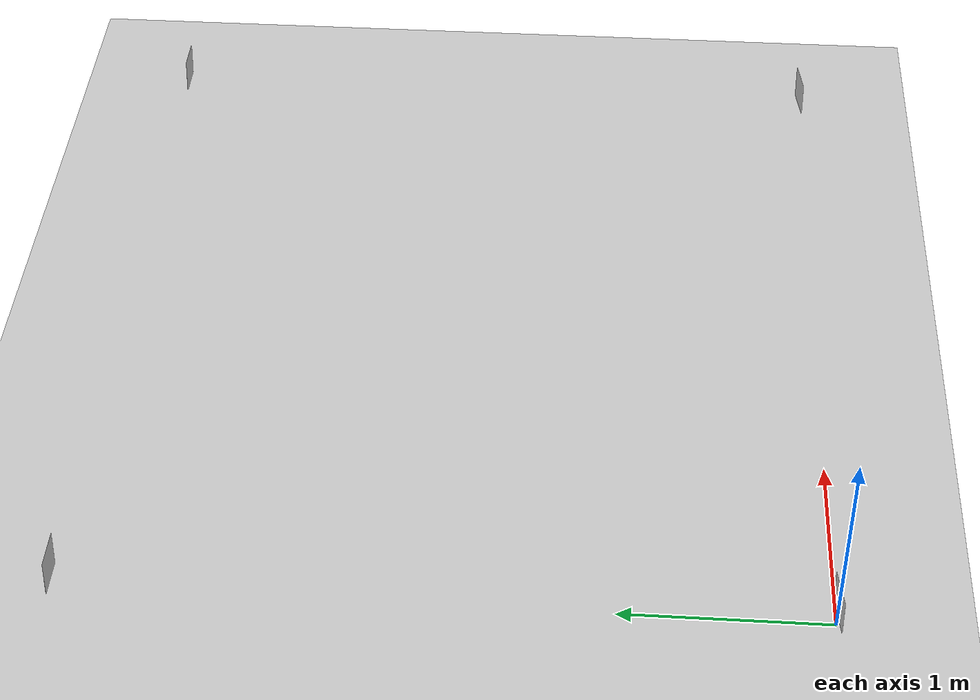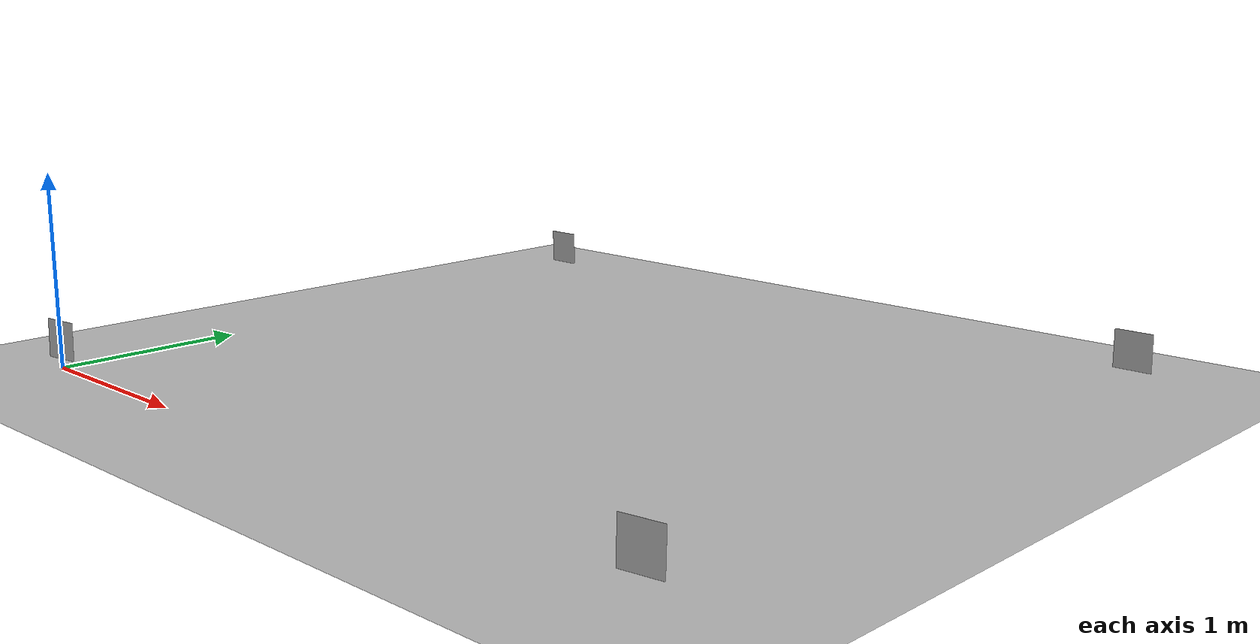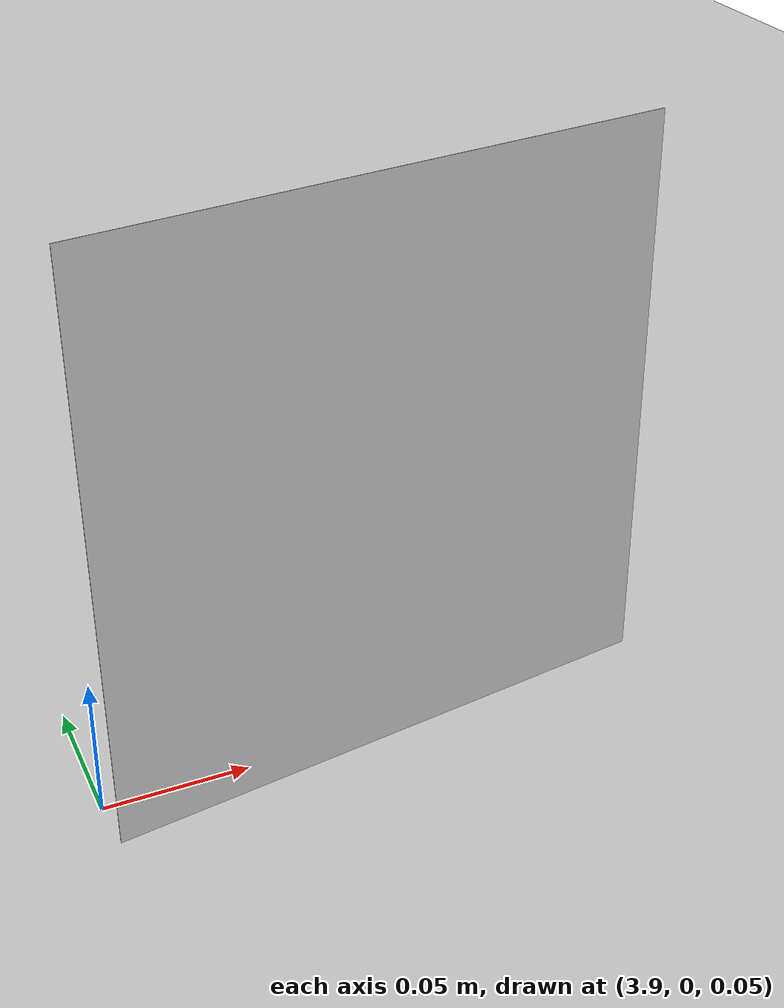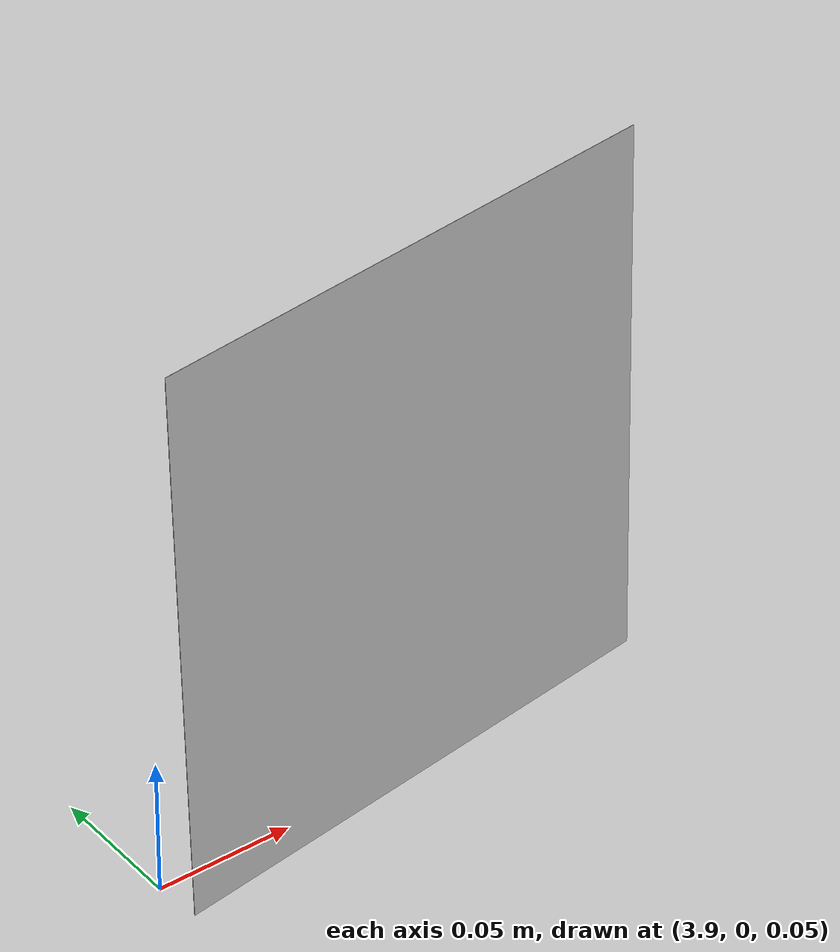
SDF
<sdf version="1.7">
 <world name="default">
  <light name="sun" type="directional">
   <cast_shadows>0</cast_shadows>
   <pose>0 0 10 0 -0 0</pose>
   <diffuse>0.8 0.8 0.8 1</diffuse>
   <specular>0.2 0.2 0.2 1</specular>
   <attenuation>
    <range>1000</range>
    <constant>0.9</constant>
    <linear>0.01</linear>
    <quadratic>0.001</quadratic>
   </attenuation>
   <direction>-0.5 0.1 -0.9</direction>
   <spot><inner_angle>0</inner_angle><outer_angle>0</outer_angle><falloff>0</falloff></spot>
  </light>
  <model name="ground_plane">
   <static>1</static>
   <link name="link">
    <collision name="collision">
     <geometry><plane><normal>0 0 1</normal><size>100 100</size></plane></geometry>
    </collision>
    <visual name="visual">
     <geometry><plane><normal>0 0 1</normal><size>100 100</size></plane></geometry>
     <material>
      <script><uri>file://media/materials/scripts/gazebo.material</uri><name>Gazebo/Grey</name></script>
     </material>
    </visual>
   </link>
  </model>
  <model name="marker_1">
   <static>1</static>
   <link name="link">
    <visual name="visual">
     <geometry><plane><normal>0 0 1</normal><size>0.2 0.2</size></plane></geometry>
     <material>
      <script>
       <uri>model://marker_1/materials/scripts</uri>
       <uri>model://marker_1/materials/textures</uri>
       <name>Marker/marker_1</name>
      </script>
     </material>
    </visual>
   </link>
   <pose>0 0 0.15 1.6 0 -3</pose>
  </model>
  <model name="marker_2">
   <static>1</static>
   <link name="link">
    <visual name="visual">
     <geometry><plane><normal>0 0 1</normal><size>0.2 0.2</size></plane></geometry>
     <material>
      <script>
       <uri>model://marker_2/materials/scripts</uri>
       <uri>model://marker_2/materials/textures</uri>
       <name>Marker/marker_2</name>
      </script>
     </material>
    </visual>
   </link>
   <pose>0 3.6 0.15 1.6 -0 0</pose>
  </model>
  <model name="marker_3">
   <static>1</static>
   <link name="link">
    <visual name="visual">
     <geometry><plane><normal>0 0 1</normal><size>0.2 0.2</size></plane></geometry>
     <material>
      <script>
       <uri>model://marker_3/materials/scripts</uri>
       <uri>model://marker_3/materials/textures</uri>
       <name>Marker/marker_3</name>
      </script>
     </material>
    </visual>
   </link>
   <pose>4 3.6 0.15 1.6 -0 0</pose>
  </model>
  <model name="marker_4">
   <static>1</static>
   <link name="link">
    <visual name="visual">
     <geometry><plane><normal>0 0 1</normal><size>0.2 0.2</size></plane></geometry>
     <material>
      <script>
       <uri>model://marker_4/materials/scripts</uri>
       <uri>model://marker_4/materials/textures</uri>
       <name>Marker/marker_4</name>
      </script>
     </material>
    </visual>
   </link>
   <pose>4 0 0.15 1.6 0 -3</pose>
  </model>
  <physics type="ode">
   <max_step_size>0.001</max_step_size>
   <real_time_factor>1</real_time_factor>
   <real_time_update_rate>1000</real_time_update_rate>
  </physics>
  <scene><ambient>0.4 0.4 0.4 1</ambient><background>0.7 0.7 0.7 1</background><shadows>1</shadows></scene>
  <gravity>0 0 -9.8</gravity>
  <magnetic_field>6e-06 2.3e-05 -4.2e-05</magnetic_field>
  <atmosphere type="adiabatic"/>
  <audio><device>default</device></audio>
  <spherical_coordinates>
   <surface_model>EARTH_WGS84</surface_model>
   <latitude_deg>0</latitude_deg>
   <longitude_deg>0</longitude_deg>
   <elevation>0</elevation>
   <heading_deg>0</heading_deg>
  </spherical_coordinates>
 </world>
</sdf>
